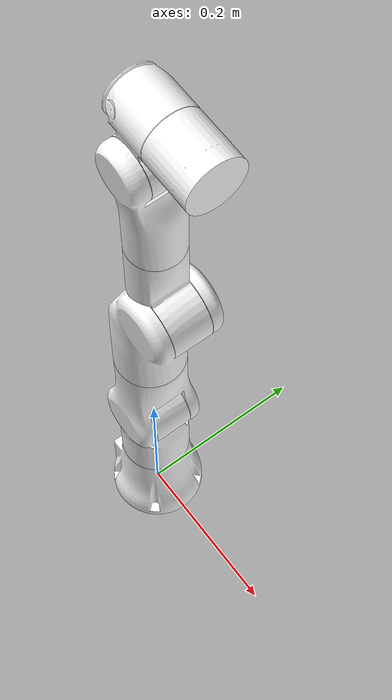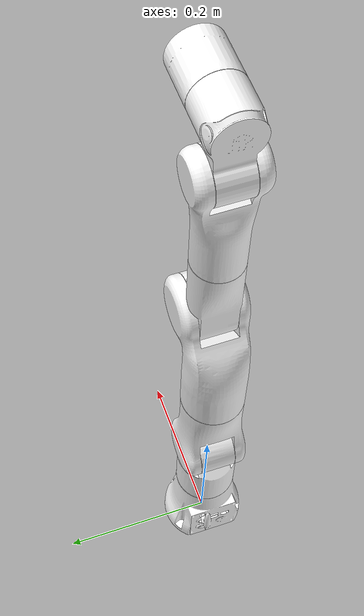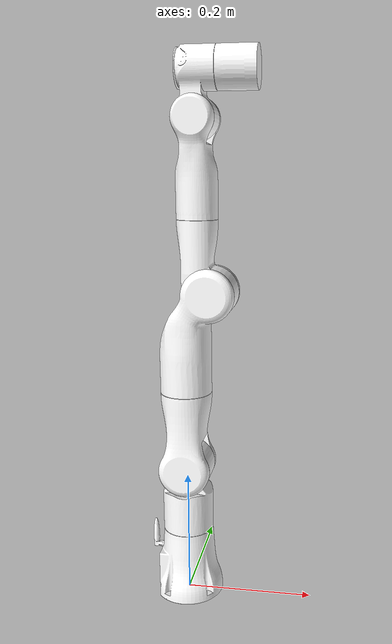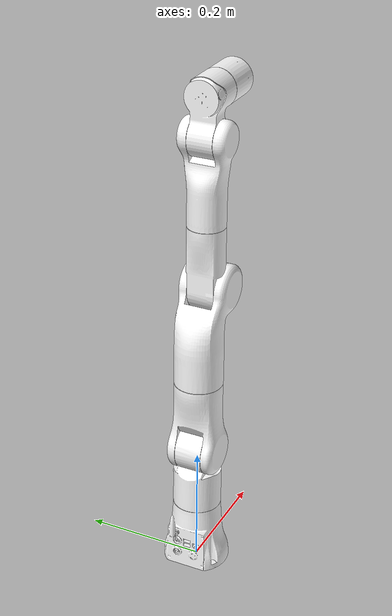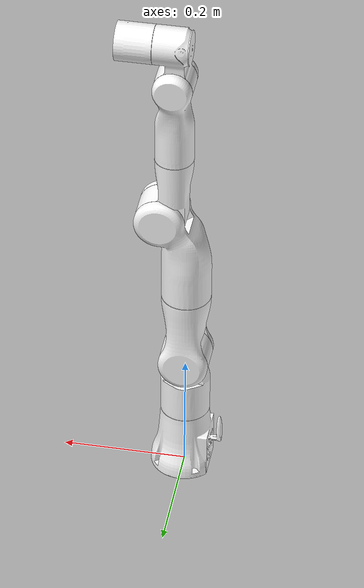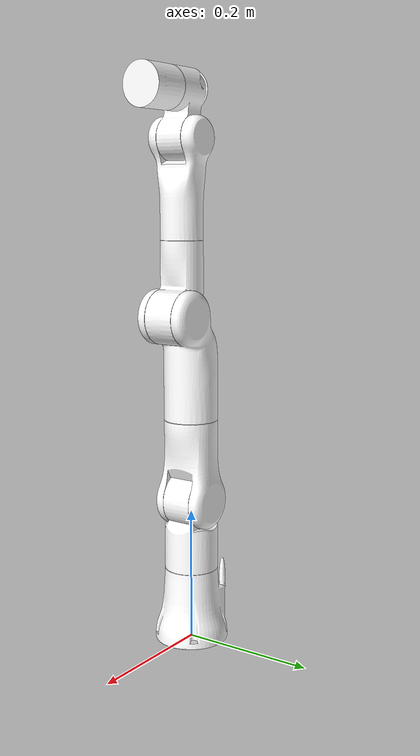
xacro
<?xml version="1.0"?>
<robot xmlns:xacro="http://www.ros.org/wiki/xacro" name="rm_gen72_description">

    <!-- Used for fixing robot to Gazebo 'base_link' 将机械手的基座固定在世界坐标上-->
    <link name="world"/>
    <joint name="fixed" type="fixed">
        <parent link="world"/>
        <child link="base_link"/>
    </joint>

    <!-- Import claw_description urdf file -->
    <xacro:include filename="$(find rm_description)/urdf/rm_gen72_gazebo.urdf" />

    <!-- 对一些link进行gazebo的属性设置 -->
    <gazebo reference="base_link">
        <self_collide>false</self_collide>
        <gravity>false</gravity>
    </gazebo>
    <gazebo reference="Link1">
        <material>Gazebo/White</material>
        <self_collide>false</self_collide>
        <gravity>false</gravity>
    </gazebo>
    <gazebo reference="Link2">
        <material>Gazebo/White</material>
        <gravity>false</gravity>
    </gazebo>
    <gazebo reference="Link3">
        <material>Gazebo/White</material>
        <gravity>false</gravity>
    </gazebo>
    <gazebo reference="Link4">
        <material>Gazebo/White</material>
        <gravity>false</gravity>
    </gazebo>
    <gazebo reference="Link5">
        <material>Gazebo/White</material>
        <gravity>false</gravity>
    </gazebo>
    <gazebo reference="Link6">
        <material>Gazebo/White</material>
        <gravity>false</gravity>
    </gazebo>
    <gazebo reference="Link7">
        <material>Gazebo/White</material>
        <gravity>false</gravity>
    </gazebo>

    <gazebo>
                <self_collide>true</self_collide>
    </gazebo>

    <!-- 声明ros2_control -->
    <ros2_control name="GazeboSystem" type="system">
        <hardware>
            <plugin>gazebo_ros2_control/GazeboSystem</plugin>
        </hardware>
        <joint name="joint1">
            <command_interface name="position"/>
            <state_interface name="position">
                <param name="initial_value">0</param>
            </state_interface>
            <state_interface name="velocity"/>
        </joint>
        <joint name="joint2">
            <command_interface name="position"/>
            <state_interface name="position">
                <param name="initial_value">0</param>
            </state_interface>
            <state_interface name="velocity"/>
        </joint>
        <joint name="joint3">
            <command_interface name="position"/>
            <state_interface name="position">
                <param name="initial_value">0</param>
            </state_interface>
            <state_interface name="velocity"/>
        </joint>
        <joint name="joint4">
            <command_interface name="position"/>
            <state_interface name="position">
                <param name="initial_value">0</param>
            </state_interface>
            <state_interface name="velocity"/>
        </joint>
        <joint name="joint5">
            <command_interface name="position"/>
            <state_interface name="position">
                <param name="initial_value">0</param>
            </state_interface>
            <state_interface name="velocity"/>
        </joint>
        <joint name="joint6">
            <command_interface name="position"/>
            <state_interface name="position">
                <param name="initial_value">0</param>
            </state_interface>
            <state_interface name="velocity"/>
        </joint>
        <joint name="joint7">
            <command_interface name="position"/>
            <state_interface name="position">
                <param name="initial_value">0</param>
            </state_interface>
            <state_interface name="velocity"/>
        </joint>
    </ros2_control>

    <!-- 加载ros2_control插件 -->
    <gazebo>
        <plugin filename="libgazebo_ros2_control.so" name="gazebo_ros2_control">
            <parameters>$(find rm_gen72_config)/config/ros2_controllers.yaml</parameters>
            <robot_param>robot_description</robot_param>
            <robot_param_node>robot_state_publisher</robot_param_node>
        </plugin>
    </gazebo>

</robot>

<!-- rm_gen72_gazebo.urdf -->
<robot
  name="rm_gen72_description">
  <link
    name="base_link">
    <inertial>
      <origin
        xyz="0.000608631599856789 0.000101410841223995 0.0500536423028974"
        rpy="0 0 0" />
      <mass
        value="0.725732279372378" />
      <inertia
        ixx="0.00116526259312761"
        ixy="3.86984764047093E-06"
        ixz="3.61598634195121E-05"
        iyy="0.00114387939249178"
        iyz="-1.69159565748085E-06"
        izz="0.000799620765266388" />
    </inertial>
    <visual>
      <origin
        xyz="0 0 0"
        rpy="0 0 0" />
      <geometry>
        <mesh
          filename="file://$(find rm_description)/meshes/rm_gen72_arm/base_link.STL" />
      </geometry>
      <material
        name="">
        <color
          rgba="1 1 1 1" />
      </material>
    </visual>
    <collision>
      <origin
        xyz="0 0 0"
        rpy="0 0 0" />
      <geometry>
        <mesh
          filename="file://$(find rm_description)/meshes/rm_gen72_arm/base_link.STL" />
      </geometry>
    </collision>
  </link>
  <link
    name="Link1">
    <inertial>
      <origin
        xyz="3.54241616240111E-07 -6.0407327765511E-05 -0.0474562076947793"
        rpy="0 0 0" />
      <mass
        value="0.511231576042974" />
      <inertia
        ixx="0.000959440501675413"
        ixy="-1.90967914521862E-09"
        ixz="-7.95751539476377E-09"
        iyy="0.00102039305288465"
        iyz="1.46570590325122E-06"
        izz="0.000388714616194907" />
    </inertial>
    <visual>
      <origin
        xyz="0 0 0"
        rpy="0 0 0" />
      <geometry>
        <mesh
          filename="file://$(find rm_description)/meshes/rm_gen72_arm/Link1.STL" />
      </geometry>
      <material
        name="">
        <color
          rgba="1 1 1 1" />
      </material>
    </visual>
    <collision>
      <origin
        xyz="0 0 0"
        rpy="0 0 0" />
      <geometry>
        <mesh
          filename="file://$(find rm_description)/meshes/rm_gen72_arm/Link1.STL" />
      </geometry>
    </collision>
  </link>
  <joint
    name="joint1"
    type="revolute">
    <origin
      xyz="0 0 0.218"
      rpy="0 0 0" />
    <parent
      link="base_link" />
    <child
      link="Link1" />
    <axis
      xyz="0 0 1" />
    <limit
      lower="-3.0014"
      upper="3.0014"
      effort="25"
      velocity="3.141" />
  </joint>
  <link
    name="Link2">
    <inertial>
      <origin
        xyz="-7.09647952406739E-07 -0.0576246216953338 -3.88440270542586E-05"
        rpy="0 0 0" />
      <mass
        value="0.551907023014854" />
      <inertia
        ixx="0.00142140348660833"
        ixy="-1.11203318362369E-08"
        ixz="1.36371990293752E-08"
        iyy="0.00052571427239726"
        iyz="1.30499471891358E-06"
        izz="0.00127234961251408" />
    </inertial>
    <visual>
      <origin
        xyz="0 0 0"
        rpy="0 0 0" />
      <geometry>
        <mesh
          filename="file://$(find rm_description)/meshes/rm_gen72_arm/Link2.STL" />
      </geometry>
      <material
        name="">
        <color
          rgba="1 1 1 1" />
      </material>
    </visual>
    <collision>
      <origin
        xyz="0 0 0"
        rpy="0 0 0" />
      <geometry>
        <mesh
          filename="file://$(find rm_description)/meshes/rm_gen72_arm/Link2.STL" />
      </geometry>
    </collision>
  </link>
  <joint
    name="joint2"
    type="revolute">
    <origin
      xyz="0 0 0"
      rpy="-1.5708 0 0" />
    <parent
      link="Link1" />
    <child
      link="Link2" />
    <axis
      xyz="0 0 1" />
    <limit
      lower="-1.8323"
      upper="1.8323"
      effort="25"
      velocity="3.141" />
  </joint>
  <link
    name="Link3">
    <inertial>
      <origin
        xyz="0.00897441376214204 2.62633968732461E-05 -0.07382847021305"
        rpy="0 0 0" />
      <mass
        value="0.774130450031718" />
      <inertia
        ixx="0.00242102073961794"
        ixy="-6.22596416744426E-07"
        ixz="-0.000489521447339786"
        iyy="0.00248694314969312"
        iyz="-1.48542895560703E-06"
        izz="0.000900997189719803" />
    </inertial>
    <visual>
      <origin
        xyz="0 0 0"
        rpy="0 0 0" />
      <geometry>
        <mesh
          filename="file://$(find rm_description)/meshes/rm_gen72_arm/Link3.STL" />
      </geometry>
      <material
        name="">
        <color
          rgba="1 1 1 1" />
      </material>
    </visual>
    <collision>
      <origin
        xyz="0 0 0"
        rpy="0 0 0" />
      <geometry>
        <mesh
          filename="file://$(find rm_description)/meshes/rm_gen72_arm/Link3.STL" />
      </geometry>
    </collision>
  </link>
  <joint
    name="joint3"
    type="revolute">
    <origin
      xyz="0 -0.28 0"
      rpy="1.5708 0 0" />
    <parent
      link="Link2" />
    <child
      link="Link3" />
    <axis
      xyz="0 0 1" />
    <limit
      lower="-3.0014"
      upper="3.0014"
      effort="25"
      velocity="3.141" />
  </joint>
  <link
    name="Link4">
    <inertial>
      <origin
        xyz="-0.00962438865086499 0.0352034287339324 0.000174576348464699"
        rpy="0 0 0" />
      <mass
        value="0.437130215853825" />
      <inertia
        ixx="0.000866914153248162"
        ixy="0.000148761646913658"
        ixz="-7.42553547352418E-07"
        iyy="0.000267753002587659"
        iyz="2.68058265485487E-06"
        izz="0.000952324298928136" />
    </inertial>
    <visual>
      <origin
        xyz="0 0 0"
        rpy="0 0 0" />
      <geometry>
        <mesh
          filename="file://$(find rm_description)/meshes/rm_gen72_arm/Link4.STL" />
      </geometry>
      <material
        name="">
        <color
          rgba="1 1 1 1" />
      </material>
    </visual>
    <collision>
      <origin
        xyz="0 0 0"
        rpy="0 0 0" />
      <geometry>
        <mesh
          filename="file://$(find rm_description)/meshes/rm_gen72_arm/Link4.STL" />
      </geometry>
    </collision>
  </link>
  <joint
    name="joint4"
    type="revolute">
    <origin
      xyz="0.04 0 0"
      rpy="1.5708 0 0" />
    <parent
      link="Link3" />
    <child
      link="Link4" />
    <axis
      xyz="0 0 1" />
    <limit
      lower="-2.8792"
      upper="0.9597"
      effort="25"
      velocity="3.141" />
  </joint>
  <link
    name="Link5">
    <inertial>
      <origin
        xyz="-4.77956518807332E-07 -3.84737693792594E-05 -0.066955487820054"
        rpy="0 0 0" />
      <mass
        value="0.424276753764529" />
      <inertia
        ixx="0.0011244489011316"
        ixy="7.5662322019411E-09"
        ixz="-1.71276249932628E-08"
        iyy="0.00103382374928123"
        iyz="8.24694417478756E-07"
        izz="0.000274640088277484" />
    </inertial>
    <visual>
      <origin
        xyz="0 0 0"
        rpy="0 0 0" />
      <geometry>
        <mesh
          filename="file://$(find rm_description)/meshes/rm_gen72_arm/Link5.STL" />
      </geometry>
      <material
        name="">
        <color
          rgba="1 1 1 1" />
      </material>
    </visual>
    <collision>
      <origin
        xyz="0 0 0"
        rpy="0 0 0" />
      <geometry>
        <mesh
          filename="file://$(find rm_description)/meshes/rm_gen72_arm/Link5.STL" />
      </geometry>
    </collision>
  </link>
  <joint
    name="joint5"
    type="revolute">
    <origin
      xyz="-0.019 0.2525 0"
      rpy="-1.5708 0 0" />
    <parent
      link="Link4" />
    <child
      link="Link5" />
    <axis
      xyz="0 0 1" />
    <limit
      lower="-3.0014"
      upper="3.0014"
      effort="5"
      velocity="3.926" />
  </joint>
  <link
    name="Link6">
    <inertial>
      <origin
        xyz="0.00184221861298974 0.0379763265035087 -9.21090904324278E-05"
        rpy="0 0 0" />
      <mass
        value="0.302793039332829" />
      <inertia
        ixx="0.00014011480503376"
        ixy="-3.00204828273403E-06"
        ixz="-4.58155498966787E-10"
        iyy="0.000132631402640971"
        iyz="7.01344540253995E-10"
        izz="0.000155721320872423" />
    </inertial>
    <visual>
      <origin
        xyz="0 0 0"
        rpy="0 0 0" />
      <geometry>
        <mesh
          filename="file://$(find rm_description)/meshes/rm_gen72_arm/Link6.STL" />
      </geometry>
      <material
        name="">
        <color
          rgba="1 1 1 1" />
      </material>
    </visual>
    <collision>
      <origin
        xyz="0 0 0"
        rpy="0 0 0" />
      <geometry>
        <mesh
          filename="file://$(find rm_description)/meshes/rm_gen72_arm/Link6.STL" />
      </geometry>
    </collision>
  </link>
  <joint
    name="joint6"
    type="revolute">
    <origin
      xyz="0 0 0"
      rpy="1.5708 0 0" />
    <parent
      link="Link5" />
    <child
      link="Link6" />
    <axis
      xyz="0 0 1" />
    <limit
      lower="-1.707"
      upper="1.783"
      effort="5"
      velocity="3.926" />
  </joint>
  <link
    name="Link7">
    <inertial>
      <origin
        xyz="0.000199884675729955 -4.25081843764018E-08 -0.0292498694019246"
        rpy="0 0 0" />
      <mass
        value="0.176612671882913" />
      <inertia
        ixx="6.24281233883421E-05"
        ixy="2.55814128580721E-10"
        ixz="-3.1014379202721E-12"
        iyy="6.24291486534025E-05"
        iyz="1.37181281239386E-11"
        izz="8.48642555354654E-05" />
    </inertial>
    <visual>
      <origin
        xyz="0 0 0"
        rpy="0 0 0" />
      <geometry>
        <mesh
          filename="file://$(find rm_description)/meshes/rm_gen72_arm/Link7.STL" />
      </geometry>
      <material
        name="">
        <color
          rgba="1 1 1 1" />
      </material>
    </visual>
    <collision>
      <origin
        xyz="0 0 0"
        rpy="0 0 0" />
      <geometry>
        <mesh
          filename="file://$(find rm_description)/meshes/rm_gen72_arm/Link7.STL" />
      </geometry>
    </collision>
  </link>
  <joint
    name="joint7"
    type="revolute">
    <origin
      xyz="0.0905 0.067 0"
      rpy="1.5708 0 1.5708" />
    <parent
      link="Link6" />
    <child
      link="Link7" />
    <axis
      xyz="0 0 1" />
    <limit
      lower="-3.0014"
      upper="3.0014"
      effort="5"
      velocity="3.926" />
  </joint>
</robot>
